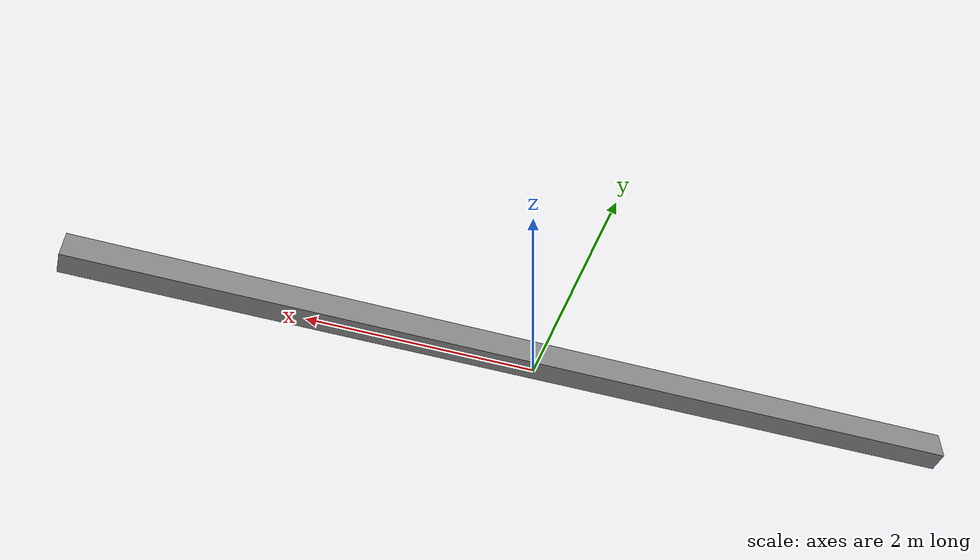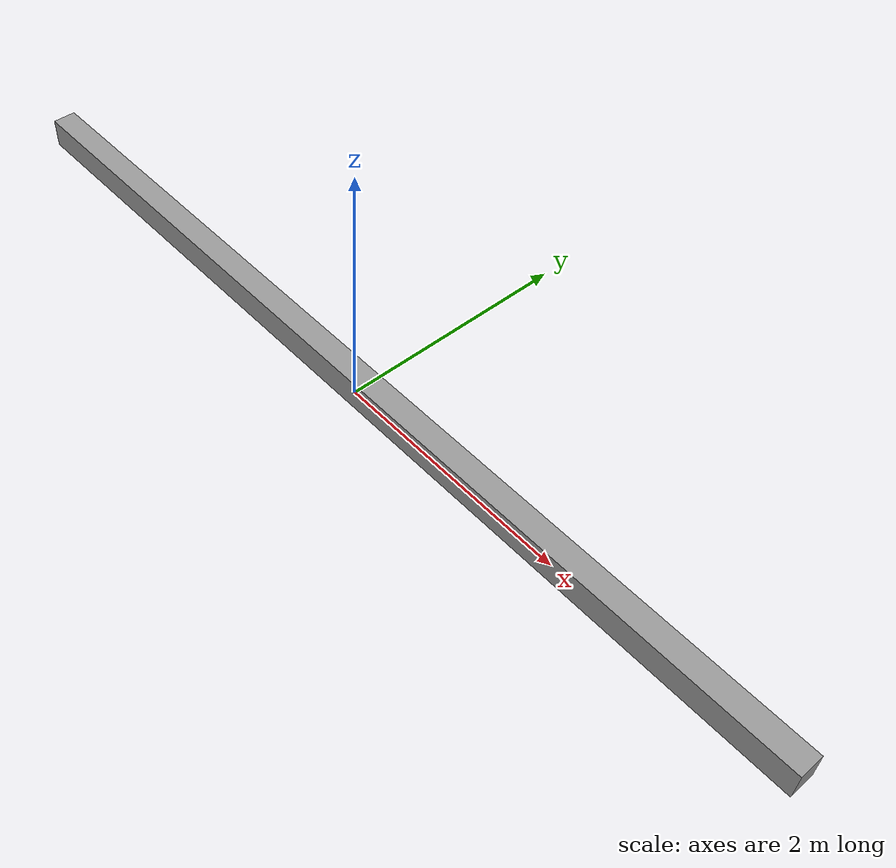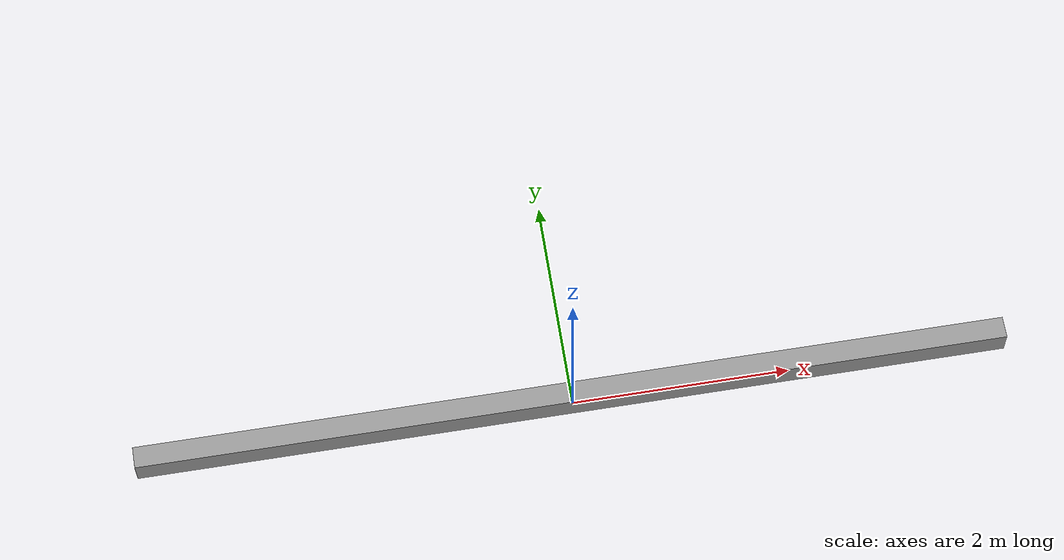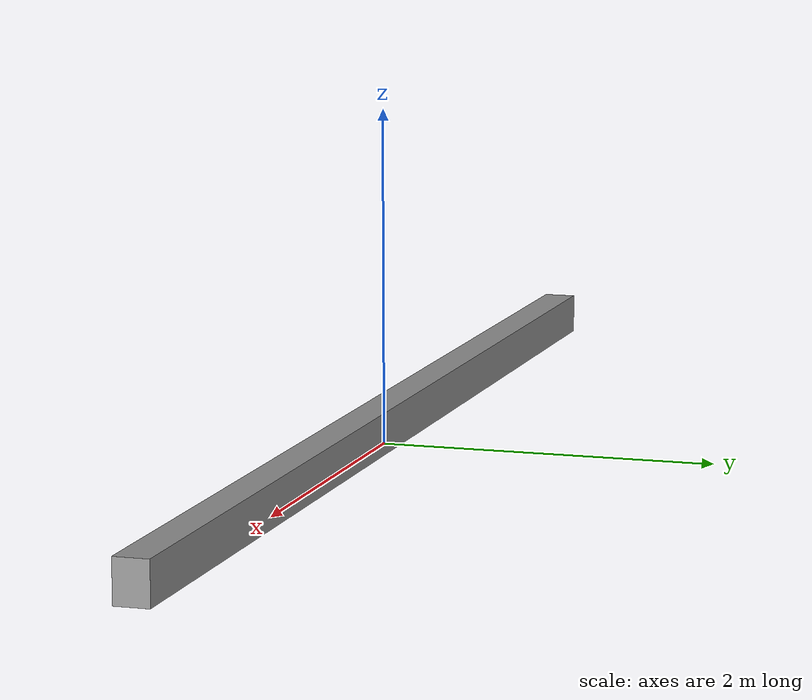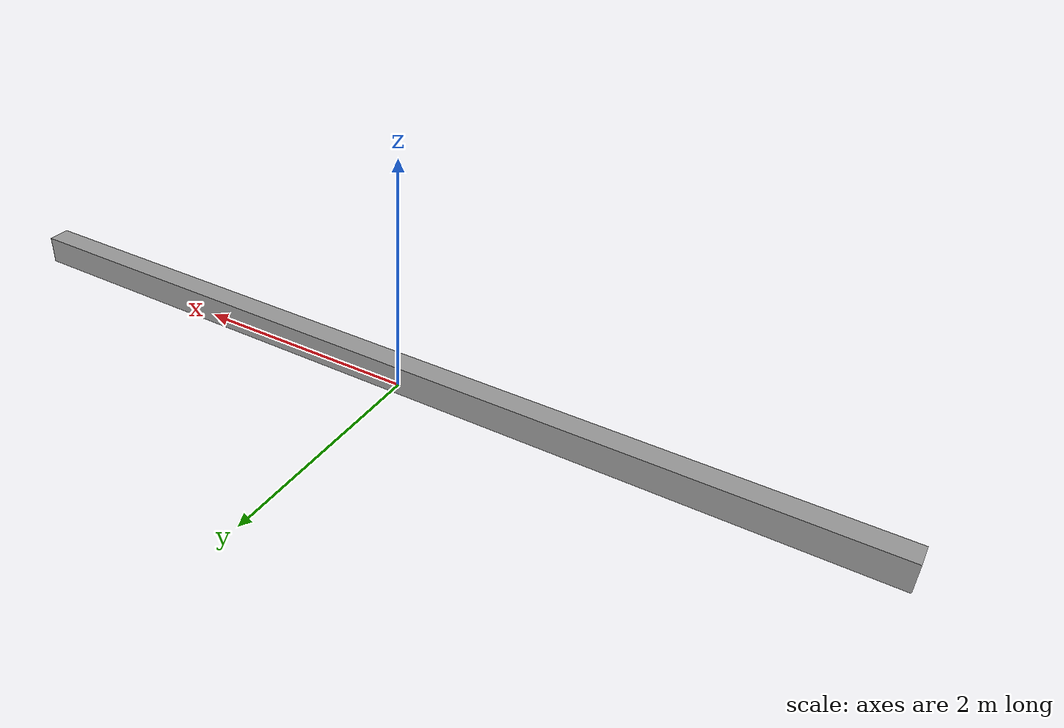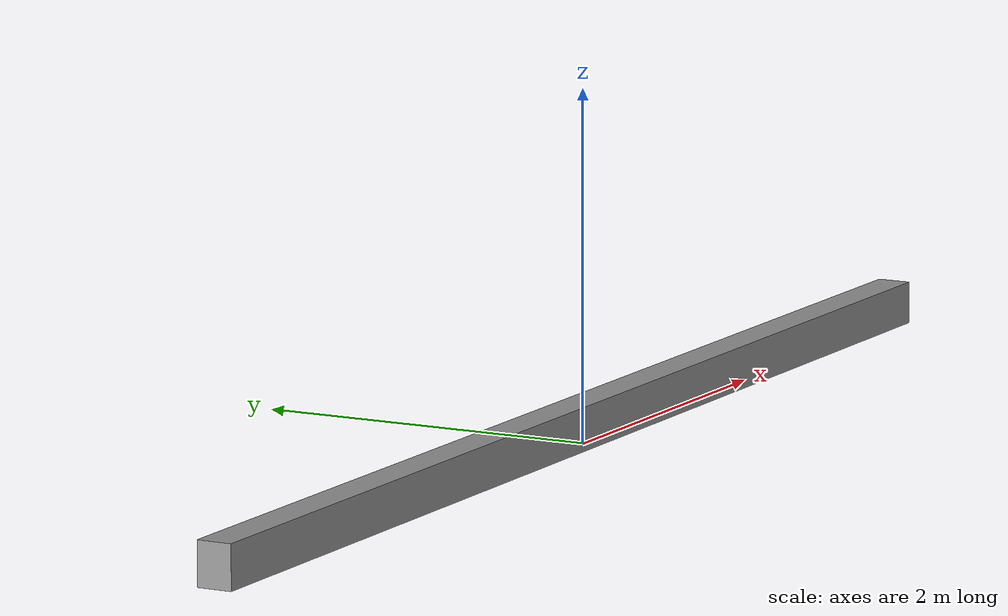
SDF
<?xml version='1.0'?>
<sdf version='1.4'>
  <model name='Wall'>
    <link name='Wall_1'>
      <collision name='Wall_1_Collision'>
        <geometry>
          <box>
            <size>8 0.2 0.24999</size>
          </box>
        </geometry>
        <pose>0 0 0.124999 0 -0 0</pose>
      </collision>
      <visual name='Wall_1_Visual'>
        <pose>0 0 0.124999 0 -0 0</pose>
        <geometry>
          <box>
            <size>8 0.2 0.24999</size>
          </box>
        </geometry>
        <material>
          <script>
            <uri>file://media/materials/scripts/gazebo.material</uri>
            <name>Gazebo/Grey</name>
          </script>
        </material>
      </visual>
      <velocity_decay>
        <linear>0</linear>
        <angular>0</angular>
      </velocity_decay>
      <pose>0 0 0 0 0 0</pose>

    </link>

    <static>1</static>
  </model>
</sdf>
